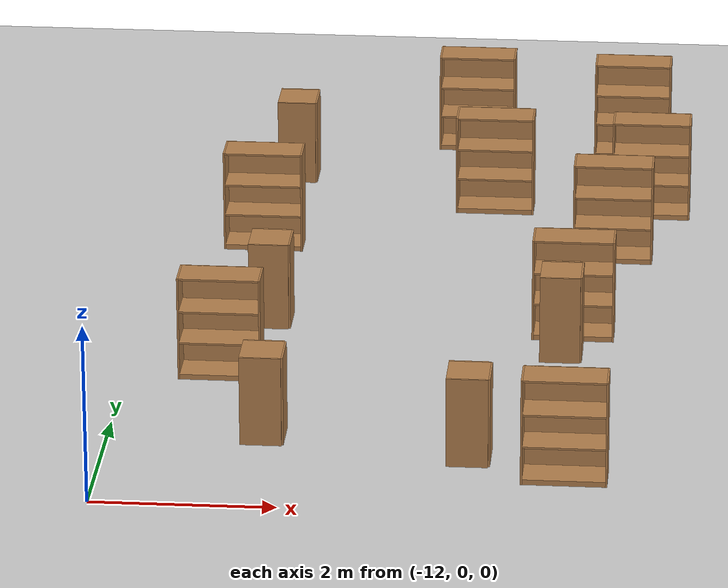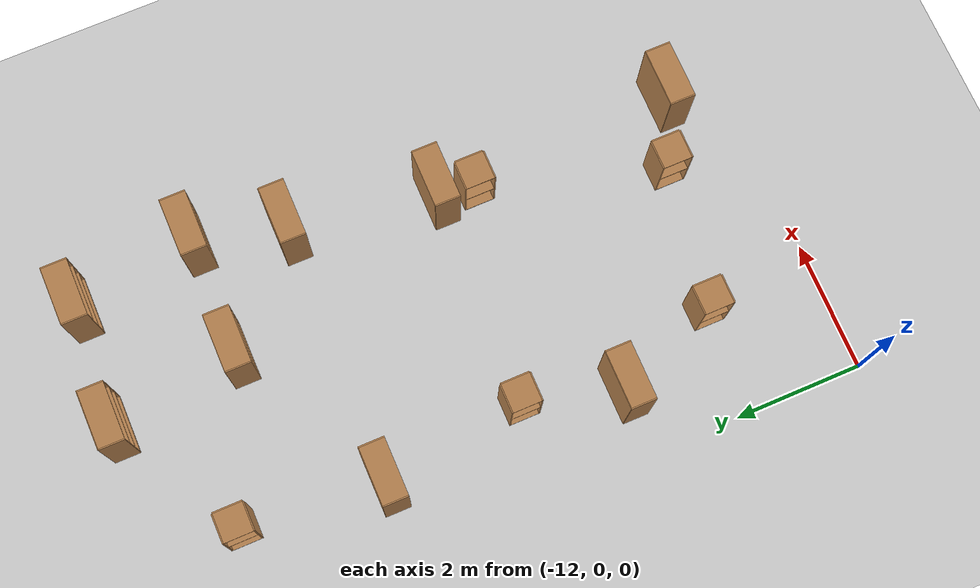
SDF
<sdf version="1.6">
 <world name="default">
  <model name="ground_plane">
   <static>1</static>
   <link name="link">
    <collision name="collision">
     <geometry><plane><normal>0 0 1</normal><size>100 100</size></plane></geometry>
     <surface><friction><ode><mu>100</mu><mu2>50</mu2></ode></friction></surface>
    </collision>
    <visual name="visual">
     <cast_shadows>0</cast_shadows>
     <geometry><plane><normal>0 0 1</normal><size>100 100</size></plane></geometry>
     <material>
      <script><uri>file://media/materials/scripts/gazebo.material</uri><name>Gazebo/Grey</name></script>
     </material>
    </visual>
   </link>
  </model>
  <model name="bookshelf_0">
   <static>1</static>
   <link name="link">
    <inertial><mass>1</mass></inertial>
    <collision name="back">
     <pose>0 0.005 0.6 0 -0 0</pose>
     <geometry><box><size>0.9 0.01 1.2</size></box></geometry>
    </collision>
    <visual name="visual1">
     <pose>0 0.005 0.6 0 -0 0</pose>
     <geometry><box><size>0.9 0.01 1.2</size></box></geometry>
     <material>
      <script><uri>file://media/materials/scripts/gazebo.material</uri><name>Gazebo/Wood</name></script>
     </material>
    </visual>
    <collision name="left_side">
     <pose>0.45 -0.195 0.6 0 -0 0</pose>
     <geometry><box><size>0.02 0.4 1.2</size></box></geometry>
    </collision>
    <visual name="visual2">
     <pose>0.45 -0.195 0.6 0 -0 0</pose>
     <geometry><box><size>0.02 0.4 1.2</size></box></geometry>
     <material>
      <script><uri>file://media/materials/scripts/gazebo.material</uri><name>Gazebo/Wood</name></script>
     </material>
    </visual>
    <collision name="right_side">
     <pose>-0.45 -0.195 0.6 0 -0 0</pose>
     <geometry><box><size>0.02 0.4 1.2</size></box></geometry>
    </collision>
    <visual name="visual3">
     <pose>-0.45 -0.195 0.6 0 -0 0</pose>
     <geometry><box><size>0.02 0.4 1.2</size></box></geometry>
     <material>
      <script><uri>file://media/materials/scripts/gazebo.material</uri><name>Gazebo/Wood</name></script>
     </material>
    </visual>
    <collision name="bottom">
     <pose>0 -0.195 0.03 0 -0 0</pose>
     <geometry><box><size>0.88 0.4 0.06</size></box></geometry>
    </collision>
    <visual name="visual4">
     <pose>0 -0.195 0.03 0 -0 0</pose>
     <geometry><box><size>0.88 0.4 0.06</size></box></geometry>
     <material>
      <script><uri>file://media/materials/scripts/gazebo.material</uri><name>Gazebo/Wood</name></script>
     </material>
    </visual>
    <collision name="top">
     <pose>0 -0.195 1.19 0 -0 0</pose>
     <geometry><box><size>0.88 0.4 0.02</size></box></geometry>
    </collision>
    <visual name="visual5">
     <pose>0 -0.195 1.19 0 -0 0</pose>
     <geometry><box><size>0.88 0.4 0.02</size></box></geometry>
     <material>
      <script><uri>file://media/materials/scripts/gazebo.material</uri><name>Gazebo/Wood</name></script>
     </material>
    </visual>
    <collision name="low_shelf">
     <pose>0 -0.195 0.43 0 -0 0</pose>
     <geometry><box><size>0.88 0.4 0.02</size></box></geometry>
    </collision>
    <visual name="visual6">
     <pose>0 -0.195 0.43 0 -0 0</pose>
     <geometry><box><size>0.88 0.4 0.02</size></box></geometry>
     <material>
      <script><uri>file://media/materials/scripts/gazebo.material</uri><name>Gazebo/Wood</name></script>
     </material>
    </visual>
    <collision name="high_shelf">
     <pose>0 -0.195 0.8 0 -0 0</pose>
     <geometry><box><size>0.88 0.4 0.02</size></box></geometry>
    </collision>
    <visual name="visual7">
     <pose>0 -0.195 0.8 0 -0 0</pose>
     <geometry><box><size>0.88 0.4 0.02</size></box></geometry>
     <material>
      <script><uri>file://media/materials/scripts/gazebo.material</uri><name>Gazebo/Wood</name></script>
     </material>
    </visual>
   </link>
   <pose>-6.38557 8.62302 0 0 -0 0</pose>
  </model>
  <model name="bookshelf">
   <static>1</static>
   <link name="link">
    <inertial><mass>1</mass></inertial>
    <collision name="back">
     <pose>0 0.005 0.6 0 -0 0</pose>
     <geometry><box><size>0.9 0.01 1.2</size></box></geometry>
    </collision>
    <visual name="visual1">
     <pose>0 0.005 0.6 0 -0 0</pose>
     <geometry><box><size>0.9 0.01 1.2</size></box></geometry>
     <material>
      <script><uri>file://media/materials/scripts/gazebo.material</uri><name>Gazebo/Wood</name></script>
     </material>
    </visual>
    <collision name="left_side">
     <pose>0.45 -0.195 0.6 0 -0 0</pose>
     <geometry><box><size>0.02 0.4 1.2</size></box></geometry>
    </collision>
    <visual name="visual2">
     <pose>0.45 -0.195 0.6 0 -0 0</pose>
     <geometry><box><size>0.02 0.4 1.2</size></box></geometry>
     <material>
      <script><uri>file://media/materials/scripts/gazebo.material</uri><name>Gazebo/Wood</name></script>
     </material>
    </visual>
    <collision name="right_side">
     <pose>-0.45 -0.195 0.6 0 -0 0</pose>
     <geometry><box><size>0.02 0.4 1.2</size></box></geometry>
    </collision>
    <visual name="visual3">
     <pose>-0.45 -0.195 0.6 0 -0 0</pose>
     <geometry><box><size>0.02 0.4 1.2</size></box></geometry>
     <material>
      <script><uri>file://media/materials/scripts/gazebo.material</uri><name>Gazebo/Wood</name></script>
     </material>
    </visual>
    <collision name="bottom">
     <pose>0 -0.195 0.03 0 -0 0</pose>
     <geometry><box><size>0.88 0.4 0.06</size></box></geometry>
    </collision>
    <visual name="visual4">
     <pose>0 -0.195 0.03 0 -0 0</pose>
     <geometry><box><size>0.88 0.4 0.06</size></box></geometry>
     <material>
      <script><uri>file://media/materials/scripts/gazebo.material</uri><name>Gazebo/Wood</name></script>
     </material>
    </visual>
    <collision name="top">
     <pose>0 -0.195 1.19 0 -0 0</pose>
     <geometry><box><size>0.88 0.4 0.02</size></box></geometry>
    </collision>
    <visual name="visual5">
     <pose>0 -0.195 1.19 0 -0 0</pose>
     <geometry><box><size>0.88 0.4 0.02</size></box></geometry>
     <material>
      <script><uri>file://media/materials/scripts/gazebo.material</uri><name>Gazebo/Wood</name></script>
     </material>
    </visual>
    <collision name="low_shelf">
     <pose>0 -0.195 0.43 0 -0 0</pose>
     <geometry><box><size>0.88 0.4 0.02</size></box></geometry>
    </collision>
    <visual name="visual6">
     <pose>0 -0.195 0.43 0 -0 0</pose>
     <geometry><box><size>0.88 0.4 0.02</size></box></geometry>
     <material>
      <script><uri>file://media/materials/scripts/gazebo.material</uri><name>Gazebo/Wood</name></script>
     </material>
    </visual>
    <collision name="high_shelf">
     <pose>0 -0.195 0.8 0 -0 0</pose>
     <geometry><box><size>0.88 0.4 0.02</size></box></geometry>
    </collision>
    <visual name="visual7">
     <pose>0 -0.195 0.8 0 -0 0</pose>
     <geometry><box><size>0.88 0.4 0.02</size></box></geometry>
     <material>
      <script><uri>file://media/materials/scripts/gazebo.material</uri><name>Gazebo/Wood</name></script>
     </material>
    </visual>
   </link>
   <pose>-8.2369 8.65056 0 0 -0 0</pose>
  </model>
  <model name="bookshelf_6">
   <static>1</static>
   <link name="link">
    <inertial><mass>1</mass></inertial>
    <collision name="back">
     <pose>0 0.005 0.6 0 -0 0</pose>
     <geometry><box><size>0.9 0.01 1.2</size></box></geometry>
    </collision>
    <visual name="visual1">
     <pose>0 0.005 0.6 0 -0 0</pose>
     <geometry><box><size>0.9 0.01 1.2</size></box></geometry>
     <material>
      <script><uri>file://media/materials/scripts/gazebo.material</uri><name>Gazebo/Wood</name></script>
     </material>
    </visual>
    <collision name="left_side">
     <pose>0.45 -0.195 0.6 0 -0 0</pose>
     <geometry><box><size>0.02 0.4 1.2</size></box></geometry>
    </collision>
    <visual name="visual2">
     <pose>0.45 -0.195 0.6 0 -0 0</pose>
     <geometry><box><size>0.02 0.4 1.2</size></box></geometry>
     <material>
      <script><uri>file://media/materials/scripts/gazebo.material</uri><name>Gazebo/Wood</name></script>
     </material>
    </visual>
    <collision name="right_side">
     <pose>-0.45 -0.195 0.6 0 -0 0</pose>
     <geometry><box><size>0.02 0.4 1.2</size></box></geometry>
    </collision>
    <visual name="visual3">
     <pose>-0.45 -0.195 0.6 0 -0 0</pose>
     <geometry><box><size>0.02 0.4 1.2</size></box></geometry>
     <material>
      <script><uri>file://media/materials/scripts/gazebo.material</uri><name>Gazebo/Wood</name></script>
     </material>
    </visual>
    <collision name="bottom">
     <pose>0 -0.195 0.03 0 -0 0</pose>
     <geometry><box><size>0.88 0.4 0.06</size></box></geometry>
    </collision>
    <visual name="visual4">
     <pose>0 -0.195 0.03 0 -0 0</pose>
     <geometry><box><size>0.88 0.4 0.06</size></box></geometry>
     <material>
      <script><uri>file://media/materials/scripts/gazebo.material</uri><name>Gazebo/Wood</name></script>
     </material>
    </visual>
    <collision name="top">
     <pose>0 -0.195 1.19 0 -0 0</pose>
     <geometry><box><size>0.88 0.4 0.02</size></box></geometry>
    </collision>
    <visual name="visual5">
     <pose>0 -0.195 1.19 0 -0 0</pose>
     <geometry><box><size>0.88 0.4 0.02</size></box></geometry>
     <material>
      <script><uri>file://media/materials/scripts/gazebo.material</uri><name>Gazebo/Wood</name></script>
     </material>
    </visual>
    <collision name="low_shelf">
     <pose>0 -0.195 0.43 0 -0 0</pose>
     <geometry><box><size>0.88 0.4 0.02</size></box></geometry>
    </collision>
    <visual name="visual6">
     <pose>0 -0.195 0.43 0 -0 0</pose>
     <geometry><box><size>0.88 0.4 0.02</size></box></geometry>
     <material>
      <script><uri>file://media/materials/scripts/gazebo.material</uri><name>Gazebo/Wood</name></script>
     </material>
    </visual>
    <collision name="high_shelf">
     <pose>0 -0.195 0.8 0 -0 0</pose>
     <geometry><box><size>0.88 0.4 0.02</size></box></geometry>
    </collision>
    <visual name="visual7">
     <pose>0 -0.195 0.8 0 -0 0</pose>
     <geometry><box><size>0.88 0.4 0.02</size></box></geometry>
     <material>
      <script><uri>file://media/materials/scripts/gazebo.material</uri><name>Gazebo/Wood</name></script>
     </material>
    </visual>
   </link>
   <pose>-6.78046 7.23968 0 0 -0 0</pose>
  </model>
  <model name="bookshelf_11">
   <static>1</static>
   <link name="link">
    <inertial><mass>1</mass></inertial>
    <collision name="back">
     <pose>0 0.005 0.6 0 -0 0</pose>
     <geometry><box><size>0.9 0.01 1.2</size></box></geometry>
    </collision>
    <visual name="visual1">
     <pose>0 0.005 0.6 0 -0 0</pose>
     <geometry><box><size>0.9 0.01 1.2</size></box></geometry>
     <material>
      <script><uri>file://media/materials/scripts/gazebo.material</uri><name>Gazebo/Wood</name></script>
     </material>
    </visual>
    <collision name="left_side">
     <pose>0.45 -0.195 0.6 0 -0 0</pose>
     <geometry><box><size>0.02 0.4 1.2</size></box></geometry>
    </collision>
    <visual name="visual2">
     <pose>0.45 -0.195 0.6 0 -0 0</pose>
     <geometry><box><size>0.02 0.4 1.2</size></box></geometry>
     <material>
      <script><uri>file://media/materials/scripts/gazebo.material</uri><name>Gazebo/Wood</name></script>
     </material>
    </visual>
    <collision name="right_side">
     <pose>-0.45 -0.195 0.6 0 -0 0</pose>
     <geometry><box><size>0.02 0.4 1.2</size></box></geometry>
    </collision>
    <visual name="visual3">
     <pose>-0.45 -0.195 0.6 0 -0 0</pose>
     <geometry><box><size>0.02 0.4 1.2</size></box></geometry>
     <material>
      <script><uri>file://media/materials/scripts/gazebo.material</uri><name>Gazebo/Wood</name></script>
     </material>
    </visual>
    <collision name="bottom">
     <pose>0 -0.195 0.03 0 -0 0</pose>
     <geometry><box><size>0.88 0.4 0.06</size></box></geometry>
    </collision>
    <visual name="visual4">
     <pose>0 -0.195 0.03 0 -0 0</pose>
     <geometry><box><size>0.88 0.4 0.06</size></box></geometry>
     <material>
      <script><uri>file://media/materials/scripts/gazebo.material</uri><name>Gazebo/Wood</name></script>
     </material>
    </visual>
    <collision name="top">
     <pose>0 -0.195 1.19 0 -0 0</pose>
     <geometry><box><size>0.88 0.4 0.02</size></box></geometry>
    </collision>
    <visual name="visual5">
     <pose>0 -0.195 1.19 0 -0 0</pose>
     <geometry><box><size>0.88 0.4 0.02</size></box></geometry>
     <material>
      <script><uri>file://media/materials/scripts/gazebo.material</uri><name>Gazebo/Wood</name></script>
     </material>
    </visual>
    <collision name="low_shelf">
     <pose>0 -0.195 0.43 0 -0 0</pose>
     <geometry><box><size>0.88 0.4 0.02</size></box></geometry>
    </collision>
    <visual name="visual6">
     <pose>0 -0.195 0.43 0 -0 0</pose>
     <geometry><box><size>0.88 0.4 0.02</size></box></geometry>
     <material>
      <script><uri>file://media/materials/scripts/gazebo.material</uri><name>Gazebo/Wood</name></script>
     </material>
    </visual>
    <collision name="high_shelf">
     <pose>0 -0.195 0.8 0 -0 0</pose>
     <geometry><box><size>0.88 0.4 0.02</size></box></geometry>
    </collision>
    <visual name="visual7">
     <pose>0 -0.195 0.8 0 -0 0</pose>
     <geometry><box><size>0.88 0.4 0.02</size></box></geometry>
     <material>
      <script><uri>file://media/materials/scripts/gazebo.material</uri><name>Gazebo/Wood</name></script>
     </material>
    </visual>
   </link>
   <pose>-7.13227 4.96324 0 0 -0 0</pose>
  </model>
  <model name="cabinet_0">
   <static>1</static>
   <link name="cabinet_bottom_plate">
    <inertial>
     <pose>0 0 -1 0 -0 0</pose>
     <inertia><ixx>2.05</ixx><ixy>0</ixy><ixz>0</ixz><iyy>2.05</iyy><iyz>0</iyz><izz>2.05</izz></inertia>
     <mass>25</mass>
    </inertial>
    <collision name="cabinet_bottom_plate_geom">
     <pose>0 0 0.01 0 -0 0</pose>
     <geometry><box><size>0.45 0.45 0.02</size></box></geometry>
    </collision>
    <visual name="cabinet_bottom_plate_geom_visual">
     <pose>0 0 0.01 0 -0 0</pose>
     <geometry><box><size>0.45 0.45 0.02</size></box></geometry>
     <material>
      <script><uri>file://media/materials/scripts/gazebo.material</uri><name>Gazebo/Wood</name></script>
     </material>
    </visual>
    <collision name="cabinet_bottom_plate_geom_cabinet_back_plate">
     <pose>0.235 0 0.51 0 -0 0</pose>
     <geometry><box><size>0.02 0.45 1.02</size></box></geometry>
    </collision>
    <visual name="cabinet_bottom_plate_geom_cabinet_back_plate_visual">
     <pose>0.235 0 0.51 0 -0 0</pose>
     <geometry><box><size>0.02 0.45 1.02</size></box></geometry>
     <material>
      <script><uri>file://media/materials/scripts/gazebo.material</uri><name>Gazebo/Wood</name></script>
     </material>
    </visual>
    <collision name="cabinet_bottom_plate_geom_cabinet_left_plate">
     <pose>0 0.235 0.51 0 -0 0</pose>
     <geometry><box><size>0.45 0.02 1.02</size></box></geometry>
    </collision>
    <visual name="cabinet_bottom_plate_geom_cabinet_left_plate_visual">
     <pose>0 0.235 0.51 0 -0 0</pose>
     <geometry><box><size>0.45 0.02 1.02</size></box></geometry>
     <material>
      <script><uri>file://media/materials/scripts/gazebo.material</uri><name>Gazebo/Wood</name></script>
     </material>
    </visual>
    <collision name="cabinet_bottom_plate_geom_cabinet_middle_plate">
     <pose>0 0 0.51 0 -0 0</pose>
     <geometry><box><size>0.45 0.45 0.02</size></box></geometry>
    </collision>
    <visual name="cabinet_bottom_plate_geom_cabinet_middle_plate_visual">
     <pose>0 0 0.51 0 -0 0</pose>
     <geometry><box><size>0.45 0.45 0.02</size></box></geometry>
     <material>
      <script><uri>file://media/materials/scripts/gazebo.material</uri><name>Gazebo/Wood</name></script>
     </material>
    </visual>
    <collision name="cabinet_bottom_plate_geom_cabinet_right_plate">
     <pose>0 -0.235 0.51 0 -0 0</pose>
     <geometry><box><size>0.45 0.02 1.02</size></box></geometry>
    </collision>
    <visual name="cabinet_bottom_plate_geom_cabinet_right_plate_visual">
     <pose>0 -0.235 0.51 0 -0 0</pose>
     <geometry><box><size>0.45 0.02 1.02</size></box></geometry>
     <material>
      <script><uri>file://media/materials/scripts/gazebo.material</uri><name>Gazebo/Wood</name></script>
     </material>
    </visual>
    <collision name="cabinet_bottom_plate_geom_cabinet_top_plate">
     <pose>0 0 1.01 0 -0 0</pose>
     <geometry><box><size>0.45 0.45 0.02</size></box></geometry>
    </collision>
    <visual name="cabinet_bottom_plate_geom_cabinet_top_plate_visual">
     <pose>0 0 1.01 0 -0 0</pose>
     <geometry><box><size>0.45 0.45 0.02</size></box></geometry>
     <material>
      <script><uri>file://media/materials/scripts/gazebo.material</uri><name>Gazebo/Wood</name></script>
     </material>
    </visual>
   </link>
   <pose>-7.24846 4.19773 0 0 -0 0</pose>
  </model>
  <model name="cabinet_7">
   <static>1</static>
   <link name="cabinet_bottom_plate">
    <inertial>
     <pose>0 0 -1 0 -0 0</pose>
     <inertia><ixx>2.05</ixx><ixy>0</ixy><ixz>0</ixz><iyy>2.05</iyy><iyz>0</iyz><izz>2.05</izz></inertia>
     <mass>25</mass>
    </inertial>
    <collision name="cabinet_bottom_plate_geom">
     <pose>0 0 0.01 0 -0 0</pose>
     <geometry><box><size>0.45 0.45 0.02</size></box></geometry>
    </collision>
    <visual name="cabinet_bottom_plate_geom_visual">
     <pose>0 0 0.01 0 -0 0</pose>
     <geometry><box><size>0.45 0.45 0.02</size></box></geometry>
     <material>
      <script><uri>file://media/materials/scripts/gazebo.material</uri><name>Gazebo/Wood</name></script>
     </material>
    </visual>
    <collision name="cabinet_bottom_plate_geom_cabinet_back_plate">
     <pose>0.235 0 0.51 0 -0 0</pose>
     <geometry><box><size>0.02 0.45 1.02</size></box></geometry>
    </collision>
    <visual name="cabinet_bottom_plate_geom_cabinet_back_plate_visual">
     <pose>0.235 0 0.51 0 -0 0</pose>
     <geometry><box><size>0.02 0.45 1.02</size></box></geometry>
     <material>
      <script><uri>file://media/materials/scripts/gazebo.material</uri><name>Gazebo/Wood</name></script>
     </material>
    </visual>
    <collision name="cabinet_bottom_plate_geom_cabinet_left_plate">
     <pose>0 0.235 0.51 0 -0 0</pose>
     <geometry><box><size>0.45 0.02 1.02</size></box></geometry>
    </collision>
    <visual name="cabinet_bottom_plate_geom_cabinet_left_plate_visual">
     <pose>0 0.235 0.51 0 -0 0</pose>
     <geometry><box><size>0.45 0.02 1.02</size></box></geometry>
     <material>
      <script><uri>file://media/materials/scripts/gazebo.material</uri><name>Gazebo/Wood</name></script>
     </material>
    </visual>
    <collision name="cabinet_bottom_plate_geom_cabinet_middle_plate">
     <pose>0 0 0.51 0 -0 0</pose>
     <geometry><box><size>0.45 0.45 0.02</size></box></geometry>
    </collision>
    <visual name="cabinet_bottom_plate_geom_cabinet_middle_plate_visual">
     <pose>0 0 0.51 0 -0 0</pose>
     <geometry><box><size>0.45 0.45 0.02</size></box></geometry>
     <material>
      <script><uri>file://media/materials/scripts/gazebo.material</uri><name>Gazebo/Wood</name></script>
     </material>
    </visual>
    <collision name="cabinet_bottom_plate_geom_cabinet_right_plate">
     <pose>0 -0.235 0.51 0 -0 0</pose>
     <geometry><box><size>0.45 0.02 1.02</size></box></geometry>
    </collision>
    <visual name="cabinet_bottom_plate_geom_cabinet_right_plate_visual">
     <pose>0 -0.235 0.51 0 -0 0</pose>
     <geometry><box><size>0.45 0.02 1.02</size></box></geometry>
     <material>
      <script><uri>file://media/materials/scripts/gazebo.material</uri><name>Gazebo/Wood</name></script>
     </material>
    </visual>
    <collision name="cabinet_bottom_plate_geom_cabinet_top_plate">
     <pose>0 0 1.01 0 -0 0</pose>
     <geometry><box><size>0.45 0.45 0.02</size></box></geometry>
    </collision>
    <visual name="cabinet_bottom_plate_geom_cabinet_top_plate_visual">
     <pose>0 0 1.01 0 -0 0</pose>
     <geometry><box><size>0.45 0.45 0.02</size></box></geometry>
     <material>
      <script><uri>file://media/materials/scripts/gazebo.material</uri><name>Gazebo/Wood</name></script>
     </material>
    </visual>
   </link>
   <pose>-8.09208 1.39286 0 0 -0 0</pose>
  </model>
  <model name="bookshelf_19">
   <static>1</static>
   <link name="link">
    <inertial><mass>1</mass></inertial>
    <collision name="back">
     <pose>0 0.005 0.6 0 -0 0</pose>
     <geometry><box><size>0.9 0.01 1.2</size></box></geometry>
    </collision>
    <visual name="visual1">
     <pose>0 0.005 0.6 0 -0 0</pose>
     <geometry><box><size>0.9 0.01 1.2</size></box></geometry>
     <material>
      <script><uri>file://media/materials/scripts/gazebo.material</uri><name>Gazebo/Wood</name></script>
     </material>
    </visual>
    <collision name="left_side">
     <pose>0.45 -0.195 0.6 0 -0 0</pose>
     <geometry><box><size>0.02 0.4 1.2</size></box></geometry>
    </collision>
    <visual name="visual2">
     <pose>0.45 -0.195 0.6 0 -0 0</pose>
     <geometry><box><size>0.02 0.4 1.2</size></box></geometry>
     <material>
      <script><uri>file://media/materials/scripts/gazebo.material</uri><name>Gazebo/Wood</name></script>
     </material>
    </visual>
    <collision name="right_side">
     <pose>-0.45 -0.195 0.6 0 -0 0</pose>
     <geometry><box><size>0.02 0.4 1.2</size></box></geometry>
    </collision>
    <visual name="visual3">
     <pose>-0.45 -0.195 0.6 0 -0 0</pose>
     <geometry><box><size>0.02 0.4 1.2</size></box></geometry>
     <material>
      <script><uri>file://media/materials/scripts/gazebo.material</uri><name>Gazebo/Wood</name></script>
     </material>
    </visual>
    <collision name="bottom">
     <pose>0 -0.195 0.03 0 -0 0</pose>
     <geometry><box><size>0.88 0.4 0.06</size></box></geometry>
    </collision>
    <visual name="visual4">
     <pose>0 -0.195 0.03 0 -0 0</pose>
     <geometry><box><size>0.88 0.4 0.06</size></box></geometry>
     <material>
      <script><uri>file://media/materials/scripts/gazebo.material</uri><name>Gazebo/Wood</name></script>
     </material>
    </visual>
    <collision name="top">
     <pose>0 -0.195 1.19 0 -0 0</pose>
     <geometry><box><size>0.88 0.4 0.02</size></box></geometry>
    </collision>
    <visual name="visual5">
     <pose>0 -0.195 1.19 0 -0 0</pose>
     <geometry><box><size>0.88 0.4 0.02</size></box></geometry>
     <material>
      <script><uri>file://media/materials/scripts/gazebo.material</uri><name>Gazebo/Wood</name></script>
     </material>
    </visual>
    <collision name="low_shelf">
     <pose>0 -0.195 0.43 0 -0 0</pose>
     <geometry><box><size>0.88 0.4 0.02</size></box></geometry>
    </collision>
    <visual name="visual6">
     <pose>0 -0.195 0.43 0 -0 0</pose>
     <geometry><box><size>0.88 0.4 0.02</size></box></geometry>
     <material>
      <script><uri>file://media/materials/scripts/gazebo.material</uri><name>Gazebo/Wood</name></script>
     </material>
    </visual>
    <collision name="high_shelf">
     <pose>0 -0.195 0.8 0 -0 0</pose>
     <geometry><box><size>0.88 0.4 0.02</size></box></geometry>
    </collision>
    <visual name="visual7">
     <pose>0 -0.195 0.8 0 -0 0</pose>
     <geometry><box><size>0.88 0.4 0.02</size></box></geometry>
     <material>
      <script><uri>file://media/materials/scripts/gazebo.material</uri><name>Gazebo/Wood</name></script>
     </material>
    </visual>
   </link>
   <pose>-7.04354 1.15424 0 0 -0 0</pose>
  </model>
  <model name="bookshelf_47">
   <static>1</static>
   <link name="link">
    <inertial><mass>1</mass></inertial>
    <collision name="back">
     <pose>0 0.005 0.6 0 -0 0</pose>
     <geometry><box><size>0.9 0.01 1.2</size></box></geometry>
    </collision>
    <visual name="visual1">
     <pose>0 0.005 0.6 0 -0 0</pose>
     <geometry><box><size>0.9 0.01 1.2</size></box></geometry>
     <material>
      <script><uri>file://media/materials/scripts/gazebo.material</uri><name>Gazebo/Wood</name></script>
     </material>
    </visual>
    <collision name="left_side">
     <pose>0.45 -0.195 0.6 0 -0 0</pose>
     <geometry><box><size>0.02 0.4 1.2</size></box></geometry>
    </collision>
    <visual name="visual2">
     <pose>0.45 -0.195 0.6 0 -0 0</pose>
     <geometry><box><size>0.02 0.4 1.2</size></box></geometry>
     <material>
      <script><uri>file://media/materials/scripts/gazebo.material</uri><name>Gazebo/Wood</name></script>
     </material>
    </visual>
    <collision name="right_side">
     <pose>-0.45 -0.195 0.6 0 -0 0</pose>
     <geometry><box><size>0.02 0.4 1.2</size></box></geometry>
    </collision>
    <visual name="visual3">
     <pose>-0.45 -0.195 0.6 0 -0 0</pose>
     <geometry><box><size>0.02 0.4 1.2</size></box></geometry>
     <material>
      <script><uri>file://media/materials/scripts/gazebo.material</uri><name>Gazebo/Wood</name></script>
     </material>
    </visual>
    <collision name="bottom">
     <pose>0 -0.195 0.03 0 -0 0</pose>
     <geometry><box><size>0.88 0.4 0.06</size></box></geometry>
    </collision>
    <visual name="visual4">
     <pose>0 -0.195 0.03 0 -0 0</pose>
     <geometry><box><size>0.88 0.4 0.06</size></box></geometry>
     <material>
      <script><uri>file://media/materials/scripts/gazebo.material</uri><name>Gazebo/Wood</name></script>
     </material>
    </visual>
    <collision name="top">
     <pose>0 -0.195 1.19 0 -0 0</pose>
     <geometry><box><size>0.88 0.4 0.02</size></box></geometry>
    </collision>
    <visual name="visual5">
     <pose>0 -0.195 1.19 0 -0 0</pose>
     <geometry><box><size>0.88 0.4 0.02</size></box></geometry>
     <material>
      <script><uri>file://media/materials/scripts/gazebo.material</uri><name>Gazebo/Wood</name></script>
     </material>
    </visual>
    <collision name="low_shelf">
     <pose>0 -0.195 0.43 0 -0 0</pose>
     <geometry><box><size>0.88 0.4 0.02</size></box></geometry>
    </collision>
    <visual name="visual6">
     <pose>0 -0.195 0.43 0 -0 0</pose>
     <geometry><box><size>0.88 0.4 0.02</size></box></geometry>
     <material>
      <script><uri>file://media/materials/scripts/gazebo.material</uri><name>Gazebo/Wood</name></script>
     </material>
    </visual>
    <collision name="high_shelf">
     <pose>0 -0.195 0.8 0 -0 0</pose>
     <geometry><box><size>0.88 0.4 0.02</size></box></geometry>
    </collision>
    <visual name="visual7">
     <pose>0 -0.195 0.8 0 -0 0</pose>
     <geometry><box><size>0.88 0.4 0.02</size></box></geometry>
     <material>
      <script><uri>file://media/materials/scripts/gazebo.material</uri><name>Gazebo/Wood</name></script>
     </material>
    </visual>
   </link>
   <pose>-10.9621 3.58583 0 0 -0 0</pose>
  </model>
  <model name="bookshelf_48">
   <static>1</static>
   <link name="link">
    <inertial><mass>1</mass></inertial>
    <collision name="back">
     <pose>0 0.005 0.6 0 -0 0</pose>
     <geometry><box><size>0.9 0.01 1.2</size></box></geometry>
    </collision>
    <visual name="visual1">
     <pose>0 0.005 0.6 0 -0 0</pose>
     <geometry><box><size>0.9 0.01 1.2</size></box></geometry>
     <material>
      <script><uri>file://media/materials/scripts/gazebo.material</uri><name>Gazebo/Wood</name></script>
     </material>
    </visual>
    <collision name="left_side">
     <pose>0.45 -0.195 0.6 0 -0 0</pose>
     <geometry><box><size>0.02 0.4 1.2</size></box></geometry>
    </collision>
    <visual name="visual2">
     <pose>0.45 -0.195 0.6 0 -0 0</pose>
     <geometry><box><size>0.02 0.4 1.2</size></box></geometry>
     <material>
      <script><uri>file://media/materials/scripts/gazebo.material</uri><name>Gazebo/Wood</name></script>
     </material>
    </visual>
    <collision name="right_side">
     <pose>-0.45 -0.195 0.6 0 -0 0</pose>
     <geometry><box><size>0.02 0.4 1.2</size></box></geometry>
    </collision>
    <visual name="visual3">
     <pose>-0.45 -0.195 0.6 0 -0 0</pose>
     <geometry><box><size>0.02 0.4 1.2</size></box></geometry>
     <material>
      <script><uri>file://media/materials/scripts/gazebo.material</uri><name>Gazebo/Wood</name></script>
     </material>
    </visual>
    <collision name="bottom">
     <pose>0 -0.195 0.03 0 -0 0</pose>
     <geometry><box><size>0.88 0.4 0.06</size></box></geometry>
    </collision>
    <visual name="visual4">
     <pose>0 -0.195 0.03 0 -0 0</pose>
     <geometry><box><size>0.88 0.4 0.06</size></box></geometry>
     <material>
      <script><uri>file://media/materials/scripts/gazebo.material</uri><name>Gazebo/Wood</name></script>
     </material>
    </visual>
    <collision name="top">
     <pose>0 -0.195 1.19 0 -0 0</pose>
     <geometry><box><size>0.88 0.4 0.02</size></box></geometry>
    </collision>
    <visual name="visual5">
     <pose>0 -0.195 1.19 0 -0 0</pose>
     <geometry><box><size>0.88 0.4 0.02</size></box></geometry>
     <material>
      <script><uri>file://media/materials/scripts/gazebo.material</uri><name>Gazebo/Wood</name></script>
     </material>
    </visual>
    <collision name="low_shelf">
     <pose>0 -0.195 0.43 0 -0 0</pose>
     <geometry><box><size>0.88 0.4 0.02</size></box></geometry>
    </collision>
    <visual name="visual6">
     <pose>0 -0.195 0.43 0 -0 0</pose>
     <geometry><box><size>0.88 0.4 0.02</size></box></geometry>
     <material>
      <script><uri>file://media/materials/scripts/gazebo.material</uri><name>Gazebo/Wood</name></script>
     </material>
    </visual>
    <collision name="high_shelf">
     <pose>0 -0.195 0.8 0 -0 0</pose>
     <geometry><box><size>0.88 0.4 0.02</size></box></geometry>
    </collision>
    <visual name="visual7">
     <pose>0 -0.195 0.8 0 -0 0</pose>
     <geometry><box><size>0.88 0.4 0.02</size></box></geometry>
     <material>
      <script><uri>file://media/materials/scripts/gazebo.material</uri><name>Gazebo/Wood</name></script>
     </material>
    </visual>
   </link>
   <pose>-10.8618 7.32627 0 0 -0 0</pose>
  </model>
  <model name="cabinet_51">
   <static>1</static>
   <link name="cabinet_bottom_plate">
    <inertial>
     <pose>0 0 -1 0 -0 0</pose>
     <inertia><ixx>2.05</ixx><ixy>0</ixy><ixz>0</ixz><iyy>2.05</iyy><iyz>0</iyz><izz>2.05</izz></inertia>
     <mass>25</mass>
    </inertial>
    <collision name="cabinet_bottom_plate_geom">
     <pose>0 0 0.01 0 -0 0</pose>
     <geometry><box><size>0.45 0.45 0.02</size></box></geometry>
    </collision>
    <visual name="cabinet_bottom_plate_geom_visual">
     <pose>0 0 0.01 0 -0 0</pose>
     <geometry><box><size>0.45 0.45 0.02</size></box></geometry>
     <material>
      <script><uri>file://media/materials/scripts/gazebo.material</uri><name>Gazebo/Wood</name></script>
     </material>
    </visual>
    <collision name="cabinet_bottom_plate_geom_cabinet_back_plate">
     <pose>0.235 0 0.51 0 -0 0</pose>
     <geometry><box><size>0.02 0.45 1.02</size></box></geometry>
    </collision>
    <visual name="cabinet_bottom_plate_geom_cabinet_back_plate_visual">
     <pose>0.235 0 0.51 0 -0 0</pose>
     <geometry><box><size>0.02 0.45 1.02</size></box></geometry>
     <material>
      <script><uri>file://media/materials/scripts/gazebo.material</uri><name>Gazebo/Wood</name></script>
     </material>
    </visual>
    <collision name="cabinet_bottom_plate_geom_cabinet_left_plate">
     <pose>0 0.235 0.51 0 -0 0</pose>
     <geometry><box><size>0.45 0.02 1.02</size></box></geometry>
    </collision>
    <visual name="cabinet_bottom_plate_geom_cabinet_left_plate_visual">
     <pose>0 0.235 0.51 0 -0 0</pose>
     <geometry><box><size>0.45 0.02 1.02</size></box></geometry>
     <material>
      <script><uri>file://media/materials/scripts/gazebo.material</uri><name>Gazebo/Wood</name></script>
     </material>
    </visual>
    <collision name="cabinet_bottom_plate_geom_cabinet_middle_plate">
     <pose>0 0 0.51 0 -0 0</pose>
     <geometry><box><size>0.45 0.45 0.02</size></box></geometry>
    </collision>
    <visual name="cabinet_bottom_plate_geom_cabinet_middle_plate_visual">
     <pose>0 0 0.51 0 -0 0</pose>
     <geometry><box><size>0.45 0.45 0.02</size></box></geometry>
     <material>
      <script><uri>file://media/materials/scripts/gazebo.material</uri><name>Gazebo/Wood</name></script>
     </material>
    </visual>
    <collision name="cabinet_bottom_plate_geom_cabinet_right_plate">
     <pose>0 -0.235 0.51 0 -0 0</pose>
     <geometry><box><size>0.45 0.02 1.02</size></box></geometry>
    </collision>
    <visual name="cabinet_bottom_plate_geom_cabinet_right_plate_visual">
     <pose>0 -0.235 0.51 0 -0 0</pose>
     <geometry><box><size>0.45 0.02 1.02</size></box></geometry>
     <material>
      <script><uri>file://media/materials/scripts/gazebo.material</uri><name>Gazebo/Wood</name></script>
     </material>
    </visual>
    <collision name="cabinet_bottom_plate_geom_cabinet_top_plate">
     <pose>0 0 1.01 0 -0 0</pose>
     <geometry><box><size>0.45 0.45 0.02</size></box></geometry>
    </collision>
    <visual name="cabinet_bottom_plate_geom_cabinet_top_plate_visual">
     <pose>0 0 1.01 0 -0 0</pose>
     <geometry><box><size>0.45 0.45 0.02</size></box></geometry>
     <material>
      <script><uri>file://media/materials/scripts/gazebo.material</uri><name>Gazebo/Wood</name></script>
     </material>
    </visual>
   </link>
   <pose>-10.3335 1.77439 0 0 -0 0</pose>
  </model>
  <model name="cabinet_52">
   <static>1</static>
   <link name="cabinet_bottom_plate">
    <inertial>
     <pose>0 0 -1 0 -0 0</pose>
     <inertia><ixx>2.05</ixx><ixy>0</ixy><ixz>0</ixz><iyy>2.05</iyy><iyz>0</iyz><izz>2.05</izz></inertia>
     <mass>25</mass>
    </inertial>
    <collision name="cabinet_bottom_plate_geom">
     <pose>0 0 0.01 0 -0 0</pose>
     <geometry><box><size>0.45 0.45 0.02</size></box></geometry>
    </collision>
    <visual name="cabinet_bottom_plate_geom_visual">
     <pose>0 0 0.01 0 -0 0</pose>
     <geometry><box><size>0.45 0.45 0.02</size></box></geometry>
     <material>
      <script><uri>file://media/materials/scripts/gazebo.material</uri><name>Gazebo/Wood</name></script>
     </material>
    </visual>
    <collision name="cabinet_bottom_plate_geom_cabinet_back_plate">
     <pose>0.235 0 0.51 0 -0 0</pose>
     <geometry><box><size>0.02 0.45 1.02</size></box></geometry>
    </collision>
    <visual name="cabinet_bottom_plate_geom_cabinet_back_plate_visual">
     <pose>0.235 0 0.51 0 -0 0</pose>
     <geometry><box><size>0.02 0.45 1.02</size></box></geometry>
     <material>
      <script><uri>file://media/materials/scripts/gazebo.material</uri><name>Gazebo/Wood</name></script>
     </material>
    </visual>
    <collision name="cabinet_bottom_plate_geom_cabinet_left_plate">
     <pose>0 0.235 0.51 0 -0 0</pose>
     <geometry><box><size>0.45 0.02 1.02</size></box></geometry>
    </collision>
    <visual name="cabinet_bottom_plate_geom_cabinet_left_plate_visual">
     <pose>0 0.235 0.51 0 -0 0</pose>
     <geometry><box><size>0.45 0.02 1.02</size></box></geometry>
     <material>
      <script><uri>file://media/materials/scripts/gazebo.material</uri><name>Gazebo/Wood</name></script>
     </material>
    </visual>
    <collision name="cabinet_bottom_plate_geom_cabinet_middle_plate">
     <pose>0 0 0.51 0 -0 0</pose>
     <geometry><box><size>0.45 0.45 0.02</size></box></geometry>
    </collision>
    <visual name="cabinet_bottom_plate_geom_cabinet_middle_plate_visual">
     <pose>0 0 0.51 0 -0 0</pose>
     <geometry><box><size>0.45 0.45 0.02</size></box></geometry>
     <material>
      <script><uri>file://media/materials/scripts/gazebo.material</uri><name>Gazebo/Wood</name></script>
     </material>
    </visual>
    <collision name="cabinet_bottom_plate_geom_cabinet_right_plate">
     <pose>0 -0.235 0.51 0 -0 0</pose>
     <geometry><box><size>0.45 0.02 1.02</size></box></geometry>
    </collision>
    <visual name="cabinet_bottom_plate_geom_cabinet_right_plate_visual">
     <pose>0 -0.235 0.51 0 -0 0</pose>
     <geometry><box><size>0.45 0.02 1.02</size></box></geometry>
     <material>
      <script><uri>file://media/materials/scripts/gazebo.material</uri><name>Gazebo/Wood</name></script>
     </material>
    </visual>
    <collision name="cabinet_bottom_plate_geom_cabinet_top_plate">
     <pose>0 0 1.01 0 -0 0</pose>
     <geometry><box><size>0.45 0.45 0.02</size></box></geometry>
    </collision>
    <visual name="cabinet_bottom_plate_geom_cabinet_top_plate_visual">
     <pose>0 0 1.01 0 -0 0</pose>
     <geometry><box><size>0.45 0.45 0.02</size></box></geometry>
     <material>
      <script><uri>file://media/materials/scripts/gazebo.material</uri><name>Gazebo/Wood</name></script>
     </material>
    </visual>
   </link>
   <pose>-10.5637 4.89846 0 0 -0 0</pose>
  </model>
  <model name="cabinet_53">
   <static>1</static>
   <link name="cabinet_bottom_plate">
    <inertial>
     <pose>0 0 -1 0 -0 0</pose>
     <inertia><ixx>2.05</ixx><ixy>0</ixy><ixz>0</ixz><iyy>2.05</iyy><iyz>0</iyz><izz>2.05</izz></inertia>
     <mass>25</mass>
    </inertial>
    <collision name="cabinet_bottom_plate_geom">
     <pose>0 0 0.01 0 -0 0</pose>
     <geometry><box><size>0.45 0.45 0.02</size></box></geometry>
    </collision>
    <visual name="cabinet_bottom_plate_geom_visual">
     <pose>0 0 0.01 0 -0 0</pose>
     <geometry><box><size>0.45 0.45 0.02</size></box></geometry>
     <material>
      <script><uri>file://media/materials/scripts/gazebo.material</uri><name>Gazebo/Wood</name></script>
     </material>
    </visual>
    <collision name="cabinet_bottom_plate_geom_cabinet_back_plate">
     <pose>0.235 0 0.51 0 -0 0</pose>
     <geometry><box><size>0.02 0.45 1.02</size></box></geometry>
    </collision>
    <visual name="cabinet_bottom_plate_geom_cabinet_back_plate_visual">
     <pose>0.235 0 0.51 0 -0 0</pose>
     <geometry><box><size>0.02 0.45 1.02</size></box></geometry>
     <material>
      <script><uri>file://media/materials/scripts/gazebo.material</uri><name>Gazebo/Wood</name></script>
     </material>
    </visual>
    <collision name="cabinet_bottom_plate_geom_cabinet_left_plate">
     <pose>0 0.235 0.51 0 -0 0</pose>
     <geometry><box><size>0.45 0.02 1.02</size></box></geometry>
    </collision>
    <visual name="cabinet_bottom_plate_geom_cabinet_left_plate_visual">
     <pose>0 0.235 0.51 0 -0 0</pose>
     <geometry><box><size>0.45 0.02 1.02</size></box></geometry>
     <material>
      <script><uri>file://media/materials/scripts/gazebo.material</uri><name>Gazebo/Wood</name></script>
     </material>
    </visual>
    <collision name="cabinet_bottom_plate_geom_cabinet_middle_plate">
     <pose>0 0 0.51 0 -0 0</pose>
     <geometry><box><size>0.45 0.45 0.02</size></box></geometry>
    </collision>
    <visual name="cabinet_bottom_plate_geom_cabinet_middle_plate_visual">
     <pose>0 0 0.51 0 -0 0</pose>
     <geometry><box><size>0.45 0.45 0.02</size></box></geometry>
     <material>
      <script><uri>file://media/materials/scripts/gazebo.material</uri><name>Gazebo/Wood</name></script>
     </material>
    </visual>
    <collision name="cabinet_bottom_plate_geom_cabinet_right_plate">
     <pose>0 -0.235 0.51 0 -0 0</pose>
     <geometry><box><size>0.45 0.02 1.02</size></box></geometry>
    </collision>
    <visual name="cabinet_bottom_plate_geom_cabinet_right_plate_visual">
     <pose>0 -0.235 0.51 0 -0 0</pose>
     <geometry><box><size>0.45 0.02 1.02</size></box></geometry>
     <material>
      <script><uri>file://media/materials/scripts/gazebo.material</uri><name>Gazebo/Wood</name></script>
     </material>
    </visual>
    <collision name="cabinet_bottom_plate_geom_cabinet_top_plate">
     <pose>0 0 1.01 0 -0 0</pose>
     <geometry><box><size>0.45 0.45 0.02</size></box></geometry>
    </collision>
    <visual name="cabinet_bottom_plate_geom_cabinet_top_plate_visual">
     <pose>0 0 1.01 0 -0 0</pose>
     <geometry><box><size>0.45 0.45 0.02</size></box></geometry>
     <material>
      <script><uri>file://media/materials/scripts/gazebo.material</uri><name>Gazebo/Wood</name></script>
     </material>
    </visual>
   </link>
   <pose>-10.6737 9.32463 0 0 -0 0</pose>
  </model>
  <model name="bookshelf_49">
   <static>1</static>
   <link name="link">
    <inertial><mass>1</mass></inertial>
    <collision name="back">
     <pose>0 0.005 0.6 0 -0 0</pose>
     <geometry><box><size>0.9 0.01 1.2</size></box></geometry>
    </collision>
    <visual name="visual1">
     <pose>0 0.005 0.6 0 -0 0</pose>
     <geometry><box><size>0.9 0.01 1.2</size></box></geometry>
     <material>
      <script><uri>file://media/materials/scripts/gazebo.material</uri><name>Gazebo/Wood</name></script>
     </material>
    </visual>
    <collision name="left_side">
     <pose>0.45 -0.195 0.6 0 -0 0</pose>
     <geometry><box><size>0.02 0.4 1.2</size></box></geometry>
    </collision>
    <visual name="visual2">
     <pose>0.45 -0.195 0.6 0 -0 0</pose>
     <geometry><box><size>0.02 0.4 1.2</size></box></geometry>
     <material>
      <script><uri>file://media/materials/scripts/gazebo.material</uri><name>Gazebo/Wood</name></script>
     </material>
    </visual>
    <collision name="right_side">
     <pose>-0.45 -0.195 0.6 0 -0 0</pose>
     <geometry><box><size>0.02 0.4 1.2</size></box></geometry>
    </collision>
    <visual name="visual3">
     <pose>-0.45 -0.195 0.6 0 -0 0</pose>
     <geometry><box><size>0.02 0.4 1.2</size></box></geometry>
     <material>
      <script><uri>file://media/materials/scripts/gazebo.material</uri><name>Gazebo/Wood</name></script>
     </material>
    </visual>
    <collision name="bottom">
     <pose>0 -0.195 0.03 0 -0 0</pose>
     <geometry><box><size>0.88 0.4 0.06</size></box></geometry>
    </collision>
    <visual name="visual4">
     <pose>0 -0.195 0.03 0 -0 0</pose>
     <geometry><box><size>0.88 0.4 0.06</size></box></geometry>
     <material>
      <script><uri>file://media/materials/scripts/gazebo.material</uri><name>Gazebo/Wood</name></script>
     </material>
    </visual>
    <collision name="top">
     <pose>0 -0.195 1.19 0 -0 0</pose>
     <geometry><box><size>0.88 0.4 0.02</size></box></geometry>
    </collision>
    <visual name="visual5">
     <pose>0 -0.195 1.19 0 -0 0</pose>
     <geometry><box><size>0.88 0.4 0.02</size></box></geometry>
     <material>
      <script><uri>file://media/materials/scripts/gazebo.material</uri><name>Gazebo/Wood</name></script>
     </material>
    </visual>
    <collision name="low_shelf">
     <pose>0 -0.195 0.43 0 -0 0</pose>
     <geometry><box><size>0.88 0.4 0.02</size></box></geometry>
    </collision>
    <visual name="visual6">
     <pose>0 -0.195 0.43 0 -0 0</pose>
     <geometry><box><size>0.88 0.4 0.02</size></box></geometry>
     <material>
      <script><uri>file://media/materials/scripts/gazebo.material</uri><name>Gazebo/Wood</name></script>
     </material>
    </visual>
    <collision name="high_shelf">
     <pose>0 -0.195 0.8 0 -0 0</pose>
     <geometry><box><size>0.88 0.4 0.02</size></box></geometry>
    </collision>
    <visual name="visual7">
     <pose>0 -0.195 0.8 0 -0 0</pose>
     <geometry><box><size>0.88 0.4 0.02</size></box></geometry>
     <material>
      <script><uri>file://media/materials/scripts/gazebo.material</uri><name>Gazebo/Wood</name></script>
     </material>
    </visual>
   </link>
   <pose>-8.57568 10.678 0 0 -0 0</pose>
  </model>
  <model name="bookshelf_50">
   <static>1</static>
   <link name="link">
    <inertial><mass>1</mass></inertial>
    <collision name="back">
     <pose>0 0.005 0.6 0 -0 0</pose>
     <geometry><box><size>0.9 0.01 1.2</size></box></geometry>
    </collision>
    <visual name="visual1">
     <pose>0 0.005 0.6 0 -0 0</pose>
     <geometry><box><size>0.9 0.01 1.2</size></box></geometry>
     <material>
      <script><uri>file://media/materials/scripts/gazebo.material</uri><name>Gazebo/Wood</name></script>
     </material>
    </visual>
    <collision name="left_side">
     <pose>0.45 -0.195 0.6 0 -0 0</pose>
     <geometry><box><size>0.02 0.4 1.2</size></box></geometry>
    </collision>
    <visual name="visual2">
     <pose>0.45 -0.195 0.6 0 -0 0</pose>
     <geometry><box><size>0.02 0.4 1.2</size></box></geometry>
     <material>
      <script><uri>file://media/materials/scripts/gazebo.material</uri><name>Gazebo/Wood</name></script>
     </material>
    </visual>
    <collision name="right_side">
     <pose>-0.45 -0.195 0.6 0 -0 0</pose>
     <geometry><box><size>0.02 0.4 1.2</size></box></geometry>
    </collision>
    <visual name="visual3">
     <pose>-0.45 -0.195 0.6 0 -0 0</pose>
     <geometry><box><size>0.02 0.4 1.2</size></box></geometry>
     <material>
      <script><uri>file://media/materials/scripts/gazebo.material</uri><name>Gazebo/Wood</name></script>
     </material>
    </visual>
    <collision name="bottom">
     <pose>0 -0.195 0.03 0 -0 0</pose>
     <geometry><box><size>0.88 0.4 0.06</size></box></geometry>
    </collision>
    <visual name="visual4">
     <pose>0 -0.195 0.03 0 -0 0</pose>
     <geometry><box><size>0.88 0.4 0.06</size></box></geometry>
     <material>
      <script><uri>file://media/materials/scripts/gazebo.material</uri><name>Gazebo/Wood</name></script>
     </material>
    </visual>
    <collision name="top">
     <pose>0 -0.195 1.19 0 -0 0</pose>
     <geometry><box><size>0.88 0.4 0.02</size></box></geometry>
    </collision>
    <visual name="visual5">
     <pose>0 -0.195 1.19 0 -0 0</pose>
     <geometry><box><size>0.88 0.4 0.02</size></box></geometry>
     <material>
      <script><uri>file://media/materials/scripts/gazebo.material</uri><name>Gazebo/Wood</name></script>
     </material>
    </visual>
    <collision name="low_shelf">
     <pose>0 -0.195 0.43 0 -0 0</pose>
     <geometry><box><size>0.88 0.4 0.02</size></box></geometry>
    </collision>
    <visual name="visual6">
     <pose>0 -0.195 0.43 0 -0 0</pose>
     <geometry><box><size>0.88 0.4 0.02</size></box></geometry>
     <material>
      <script><uri>file://media/materials/scripts/gazebo.material</uri><name>Gazebo/Wood</name></script>
     </material>
    </visual>
    <collision name="high_shelf">
     <pose>0 -0.195 0.8 0 -0 0</pose>
     <geometry><box><size>0.88 0.4 0.02</size></box></geometry>
    </collision>
    <visual name="visual7">
     <pose>0 -0.195 0.8 0 -0 0</pose>
     <geometry><box><size>0.88 0.4 0.02</size></box></geometry>
     <material>
      <script><uri>file://media/materials/scripts/gazebo.material</uri><name>Gazebo/Wood</name></script>
     </material>
    </visual>
   </link>
   <pose>-6.6774 10.5522 0 0 -0 0</pose>
  </model>
 </world>
</sdf>
